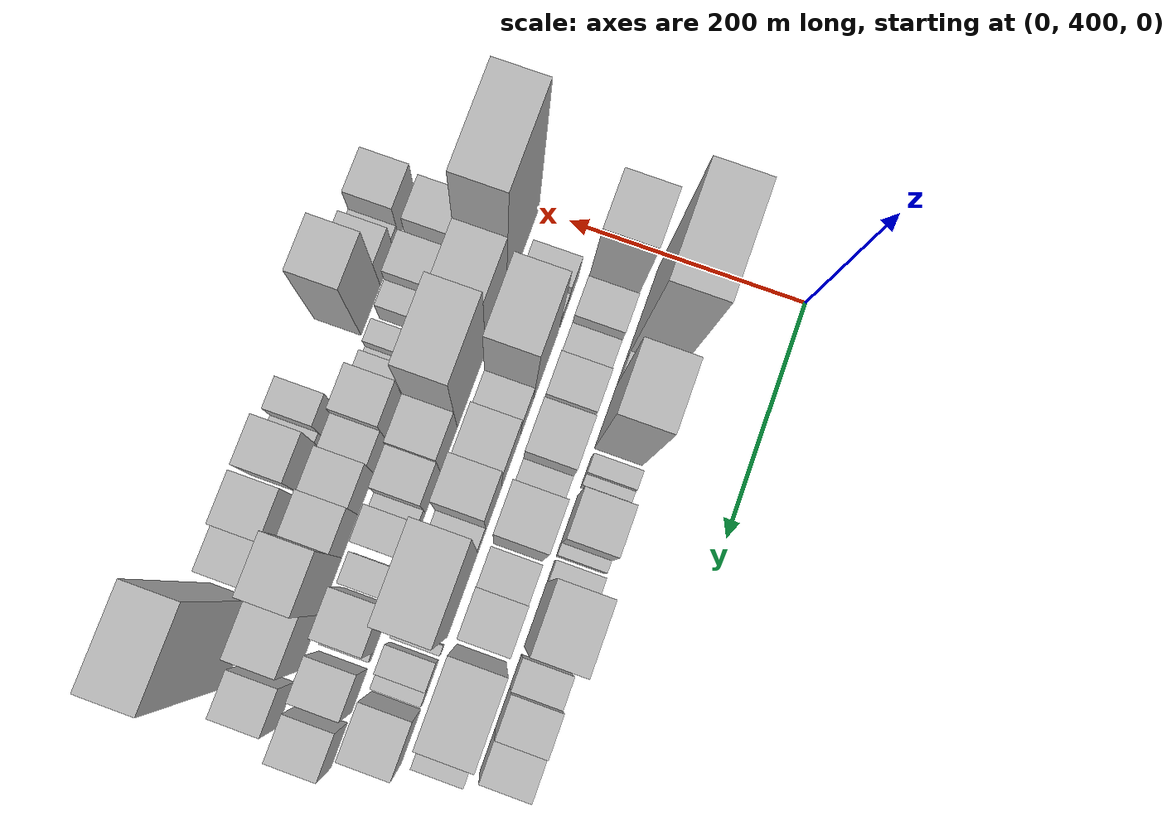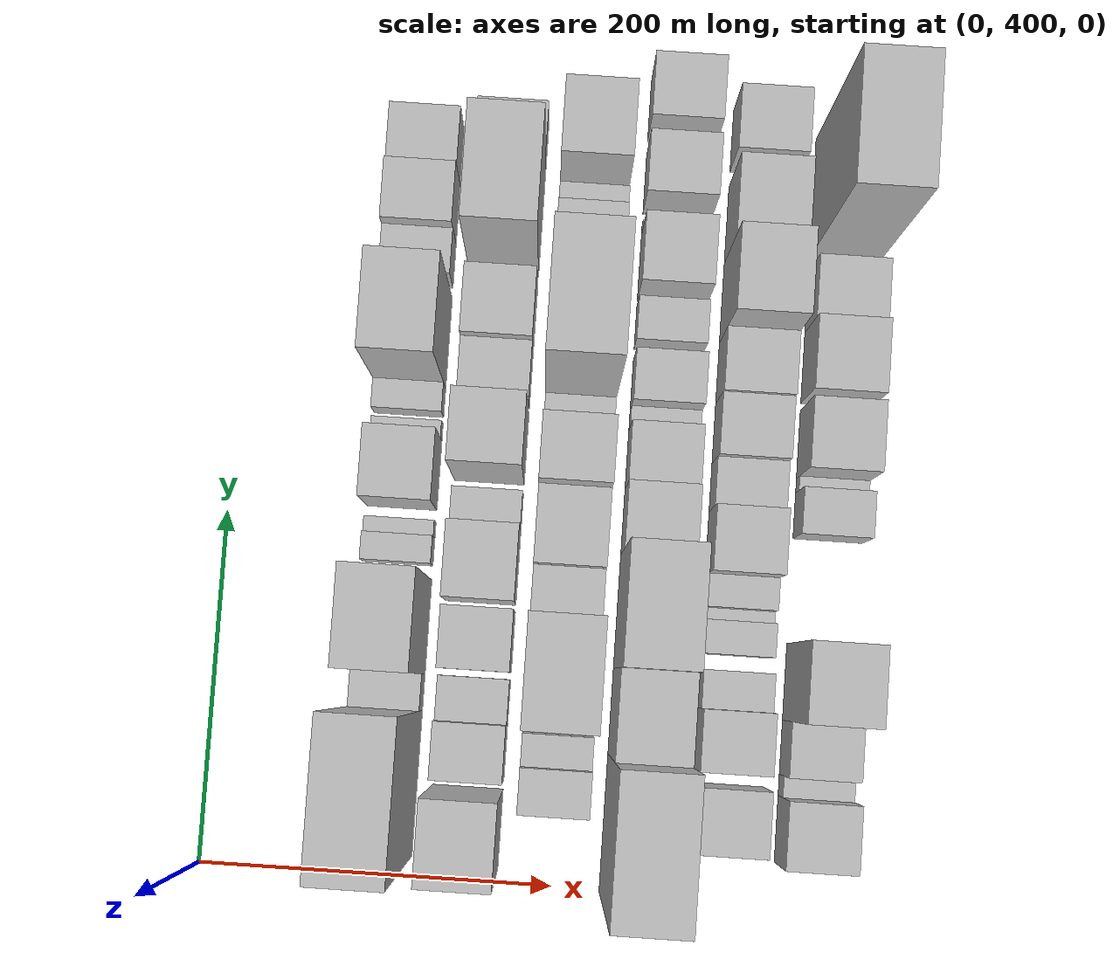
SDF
<sdf version="1.6">
 <world name="default">
  <model name="building_41">
   <static>1</static>
   <pose>100.0000 452.6909 0 0.000000 0.000000 0.000000</pose>
   <link name="link">
    <pose>0 0 108.00 0 0 0</pose>
    <collision name="collision"><geometry><box><size>40.0000 82.4830 216.0000</size></box></geometry></collision>
    <visual name="visual">
     <cast_shadows>0</cast_shadows>
     <geometry><box><size>40.0000 82.4830 216.0000</size></box></geometry>
     <material>
      <script>
       <uri>model://HANNAS_wall/materials/scripts</uri>
       <uri>model://HANNAS_wall/materials/textures</uri>
       <name>vrc/HANNAS_wall</name>
      </script>
     </material>
    </visual>
   </link>
  </model>
  <model name="building_42">
   <static>1</static>
   <pose>100.0000 504.3859 0 0.000000 0.000000 0.000000</pose>
   <link name="link">
    <pose>0 0 18.00 0 0 0</pose>
    <collision name="collision"><geometry><box><size>40.0000 20.9069 36.0000</size></box></geometry></collision>
    <visual name="visual">
     <cast_shadows>0</cast_shadows>
     <geometry><box><size>40.0000 20.9069 36.0000</size></box></geometry>
     <material>
      <script>
       <uri>model://HANNAS_wall/materials/scripts</uri>
       <uri>model://HANNAS_wall/materials/textures</uri>
       <name>vrc/HANNAS_wall</name>
      </script>
     </material>
    </visual>
   </link>
  </model>
  <model name="building_43">
   <static>1</static>
   <pose>100.0000 541.6491 0 0.000000 0.000000 0.000000</pose>
   <link name="link">
    <pose>0 0 79.50 0 0 0</pose>
    <collision name="collision"><geometry><box><size>40.0000 53.6196 159.0000</size></box></geometry></collision>
    <visual name="visual">
     <cast_shadows>0</cast_shadows>
     <geometry><box><size>40.0000 53.6196 159.0000</size></box></geometry>
     <material>
      <script>
       <uri>model://HANNAS_wall/materials/scripts</uri>
       <uri>model://HANNAS_wall/materials/textures</uri>
       <name>vrc/HANNAS_wall</name>
      </script>
     </material>
    </visual>
   </link>
  </model>
  <model name="building_44">
   <static>1</static>
   <pose>100.0000 584.3371 0 0.000000 0.000000 0.000000</pose>
   <link name="link">
    <pose>0 0 15.00 0 0 0</pose>
    <collision name="collision"><geometry><box><size>40.0000 15.7563 30.0000</size></box></geometry></collision>
    <visual name="visual">
     <cast_shadows>0</cast_shadows>
     <geometry><box><size>40.0000 15.7563 30.0000</size></box></geometry>
     <material>
      <script>
       <uri>model://HANNAS_wall/materials/scripts</uri>
       <uri>model://HANNAS_wall/materials/textures</uri>
       <name>vrc/HANNAS_wall</name>
      </script>
     </material>
    </visual>
   </link>
  </model>
  <model name="building_45">
   <static>1</static>
   <pose>100.0000 596.8520 0 0.000000 0.000000 0.000000</pose>
   <link name="link">
    <pose>0 0 10.50 0 0 0</pose>
    <collision name="collision"><geometry><box><size>40.0000 9.2735 21.0000</size></box></geometry></collision>
    <visual name="visual">
     <cast_shadows>0</cast_shadows>
     <geometry><box><size>40.0000 9.2735 21.0000</size></box></geometry>
     <material>
      <script>
       <uri>model://HANNAS_wall/materials/scripts</uri>
       <uri>model://HANNAS_wall/materials/textures</uri>
       <name>vrc/HANNAS_wall</name>
      </script>
     </material>
    </visual>
   </link>
  </model>
  <model name="building_46">
   <static>1</static>
   <pose>100.0000 628.4314 0 0.000000 0.000000 0.000000</pose>
   <link name="link">
    <pose>0 0 37.50 0 0 0</pose>
    <collision name="collision"><geometry><box><size>40.0000 39.8854 75.0000</size></box></geometry></collision>
    <visual name="visual">
     <cast_shadows>0</cast_shadows>
     <geometry><box><size>40.0000 39.8854 75.0000</size></box></geometry>
     <material>
      <script>
       <uri>model://HANNAS_wall/materials/scripts</uri>
       <uri>model://HANNAS_wall/materials/textures</uri>
       <name>vrc/HANNAS_wall</name>
      </script>
     </material>
    </visual>
   </link>
  </model>
  <model name="building_47">
   <static>1</static>
   <pose>100.0000 653.3997 0 0.000000 0.000000 0.000000</pose>
   <link name="link">
    <pose>0 0 10.50 0 0 0</pose>
    <collision name="collision"><geometry><box><size>40.0000 10.0511 21.0000</size></box></geometry></collision>
    <visual name="visual">
     <cast_shadows>0</cast_shadows>
     <geometry><box><size>40.0000 10.0511 21.0000</size></box></geometry>
     <material>
      <script>
       <uri>model://HANNAS_wall/materials/scripts</uri>
       <uri>model://HANNAS_wall/materials/textures</uri>
       <name>vrc/HANNAS_wall</name>
      </script>
     </material>
    </visual>
   </link>
  </model>
  <model name="building_48">
   <static>1</static>
   <pose>100.0000 670.7769 0 0.000000 0.000000 0.000000</pose>
   <link name="link">
    <pose>0 0 15.00 0 0 0</pose>
    <collision name="collision"><geometry><box><size>40.0000 16.7034 30.0000</size></box></geometry></collision>
    <visual name="visual">
     <cast_shadows>0</cast_shadows>
     <geometry><box><size>40.0000 16.7034 30.0000</size></box></geometry>
     <material>
      <script>
       <uri>model://HANNAS_wall/materials/scripts</uri>
       <uri>model://HANNAS_wall/materials/textures</uri>
       <name>vrc/HANNAS_wall</name>
      </script>
     </material>
    </visual>
   </link>
  </model>
  <model name="building_49">
   <static>1</static>
   <pose>100.0000 705.5917 0 0.000000 0.000000 0.000000</pose>
   <link name="link">
    <pose>0 0 73.50 0 0 0</pose>
    <collision name="collision"><geometry><box><size>40.0000 52.9262 147.0000</size></box></geometry></collision>
    <visual name="visual">
     <cast_shadows>0</cast_shadows>
     <geometry><box><size>40.0000 52.9262 147.0000</size></box></geometry>
     <material>
      <script>
       <uri>model://HANNAS_wall/materials/scripts</uri>
       <uri>model://HANNAS_wall/materials/textures</uri>
       <name>vrc/HANNAS_wall</name>
      </script>
     </material>
    </visual>
   </link>
  </model>
  <model name="building_50">
   <static>1</static>
   <pose>100.0000 750.9879 0 0.000000 0.000000 0.000000</pose>
   <link name="link">
    <pose>0 0 24.00 0 0 0</pose>
    <collision name="collision"><geometry><box><size>40.0000 25.8662 48.0000</size></box></geometry></collision>
    <visual name="visual">
     <cast_shadows>0</cast_shadows>
     <geometry><box><size>40.0000 25.8662 48.0000</size></box></geometry>
     <material>
      <script>
       <uri>model://HANNAS_wall/materials/scripts</uri>
       <uri>model://HANNAS_wall/materials/textures</uri>
       <name>vrc/HANNAS_wall</name>
      </script>
     </material>
    </visual>
   </link>
  </model>
  <model name="building_51">
   <static>1</static>
   <pose>100.0000 780.9781 0 0.000000 0.000000 0.000000</pose>
   <link name="link">
    <pose>0 0 33.00 0 0 0</pose>
    <collision name="collision"><geometry><box><size>40.0000 34.1140 66.0000</size></box></geometry></collision>
    <visual name="visual">
     <cast_shadows>0</cast_shadows>
     <geometry><box><size>40.0000 34.1140 66.0000</size></box></geometry>
     <material>
      <script>
       <uri>model://HANNAS_wall/materials/scripts</uri>
       <uri>model://HANNAS_wall/materials/textures</uri>
       <name>vrc/HANNAS_wall</name>
      </script>
     </material>
    </visual>
   </link>
  </model>
  <model name="building_52">
   <static>1</static>
   <pose>100.0000 814.6739 0 0.000000 0.000000 0.000000</pose>
   <link name="link">
    <pose>0 0 28.50 0 0 0</pose>
    <collision name="collision"><geometry><box><size>40.0000 33.2777 57.0000</size></box></geometry></collision>
    <visual name="visual">
     <cast_shadows>0</cast_shadows>
     <geometry><box><size>40.0000 33.2777 57.0000</size></box></geometry>
     <material>
      <script>
       <uri>model://HANNAS_wall/materials/scripts</uri>
       <uri>model://HANNAS_wall/materials/textures</uri>
       <name>vrc/HANNAS_wall</name>
      </script>
     </material>
    </visual>
   </link>
  </model>
  <model name="building_84">
   <static>1</static>
   <pose>149.0000 430.1123 0 0.000000 0.000000 0.000000</pose>
   <link name="link">
    <pose>0 0 75.00 0 0 0</pose>
    <collision name="collision"><geometry><box><size>40.0000 45.3367 150.0000</size></box></geometry></collision>
    <visual name="visual">
     <cast_shadows>0</cast_shadows>
     <geometry><box><size>40.0000 45.3367 150.0000</size></box></geometry>
     <material>
      <script>
       <uri>model://HANNAS_wall/materials/scripts</uri>
       <uri>model://HANNAS_wall/materials/textures</uri>
       <name>vrc/HANNAS_wall</name>
      </script>
     </material>
    </visual>
   </link>
  </model>
  <model name="building_85">
   <static>1</static>
   <pose>149.0000 473.7548 0 0.000000 0.000000 0.000000</pose>
   <link name="link">
    <pose>0 0 31.50 0 0 0</pose>
    <collision name="collision"><geometry><box><size>40.0000 31.9483 63.0000</size></box></geometry></collision>
    <visual name="visual">
     <cast_shadows>0</cast_shadows>
     <geometry><box><size>40.0000 31.9483 63.0000</size></box></geometry>
     <material>
      <script>
       <uri>model://HANNAS_wall/materials/scripts</uri>
       <uri>model://HANNAS_wall/materials/textures</uri>
       <name>vrc/HANNAS_wall</name>
      </script>
     </material>
    </visual>
   </link>
  </model>
  <model name="building_86">
   <static>1</static>
   <pose>149.0000 502.2290 0 0.000000 0.000000 0.000000</pose>
   <link name="link">
    <pose>0 0 21.00 0 0 0</pose>
    <collision name="collision"><geometry><box><size>40.0000 25.0001 42.0000</size></box></geometry></collision>
    <visual name="visual">
     <cast_shadows>0</cast_shadows>
     <geometry><box><size>40.0000 25.0001 42.0000</size></box></geometry>
     <material>
      <script>
       <uri>model://HANNAS_wall/materials/scripts</uri>
       <uri>model://HANNAS_wall/materials/textures</uri>
       <name>vrc/HANNAS_wall</name>
      </script>
     </material>
    </visual>
   </link>
  </model>
  <model name="building_87">
   <static>1</static>
   <pose>149.0000 535.9598 0 0.000000 0.000000 0.000000</pose>
   <link name="link">
    <pose>0 0 33.00 0 0 0</pose>
    <collision name="collision"><geometry><box><size>40.0000 34.4614 66.0000</size></box></geometry></collision>
    <visual name="visual">
     <cast_shadows>0</cast_shadows>
     <geometry><box><size>40.0000 34.4614 66.0000</size></box></geometry>
     <material>
      <script>
       <uri>model://HANNAS_wall/materials/scripts</uri>
       <uri>model://HANNAS_wall/materials/textures</uri>
       <name>vrc/HANNAS_wall</name>
      </script>
     </material>
    </visual>
   </link>
  </model>
  <model name="building_88">
   <static>1</static>
   <pose>149.0000 578.3269 0 0.000000 0.000000 0.000000</pose>
   <link name="link">
    <pose>0 0 37.50 0 0 0</pose>
    <collision name="collision"><geometry><box><size>40.0000 42.2729 75.0000</size></box></geometry></collision>
    <visual name="visual">
     <cast_shadows>0</cast_shadows>
     <geometry><box><size>40.0000 42.2729 75.0000</size></box></geometry>
     <material>
      <script>
       <uri>model://HANNAS_wall/materials/scripts</uri>
       <uri>model://HANNAS_wall/materials/textures</uri>
       <name>vrc/HANNAS_wall</name>
      </script>
     </material>
    </visual>
   </link>
  </model>
  <model name="building_89">
   <static>1</static>
   <pose>149.0000 609.9857 0 0.000000 0.000000 0.000000</pose>
   <link name="link">
    <pose>0 0 18.00 0 0 0</pose>
    <collision name="collision"><geometry><box><size>40.0000 21.0447 36.0000</size></box></geometry></collision>
    <visual name="visual">
     <cast_shadows>0</cast_shadows>
     <geometry><box><size>40.0000 21.0447 36.0000</size></box></geometry>
     <material>
      <script>
       <uri>model://HANNAS_wall/materials/scripts</uri>
       <uri>model://HANNAS_wall/materials/textures</uri>
       <name>vrc/HANNAS_wall</name>
      </script>
     </material>
    </visual>
   </link>
  </model>
  <model name="building_90">
   <static>1</static>
   <pose>149.0000 646.1515 0 0.000000 0.000000 0.000000</pose>
   <link name="link">
    <pose>0 0 61.50 0 0 0</pose>
    <collision name="collision"><geometry><box><size>40.0000 39.2870 123.0000</size></box></geometry></collision>
    <visual name="visual">
     <cast_shadows>0</cast_shadows>
     <geometry><box><size>40.0000 39.2870 123.0000</size></box></geometry>
     <material>
      <script>
       <uri>model://HANNAS_wall/materials/scripts</uri>
       <uri>model://HANNAS_wall/materials/textures</uri>
       <name>vrc/HANNAS_wall</name>
      </script>
     </material>
    </visual>
   </link>
  </model>
  <model name="building_91">
   <static>1</static>
   <pose>149.0000 686.3469 0 0.000000 0.000000 0.000000</pose>
   <link name="link">
    <pose>0 0 30.00 0 0 0</pose>
    <collision name="collision"><geometry><box><size>40.0000 31.1037 60.0000</size></box></geometry></collision>
    <visual name="visual">
     <cast_shadows>0</cast_shadows>
     <geometry><box><size>40.0000 31.1037 60.0000</size></box></geometry>
     <material>
      <script>
       <uri>model://HANNAS_wall/materials/scripts</uri>
       <uri>model://HANNAS_wall/materials/textures</uri>
       <name>vrc/HANNAS_wall</name>
      </script>
     </material>
    </visual>
   </link>
  </model>
  <model name="building_92">
   <static>1</static>
   <pose>149.0000 721.2364 0 0.000000 0.000000 0.000000</pose>
   <link name="link">
    <pose>0 0 37.50 0 0 0</pose>
    <collision name="collision"><geometry><box><size>40.0000 38.6753 75.0000</size></box></geometry></collision>
    <visual name="visual">
     <cast_shadows>0</cast_shadows>
     <geometry><box><size>40.0000 38.6753 75.0000</size></box></geometry>
     <material>
      <script>
       <uri>model://HANNAS_wall/materials/scripts</uri>
       <uri>model://HANNAS_wall/materials/textures</uri>
       <name>vrc/HANNAS_wall</name>
      </script>
     </material>
    </visual>
   </link>
  </model>
  <model name="building_93">
   <static>1</static>
   <pose>149.0000 778.3093 0 0.000000 0.000000 0.000000</pose>
   <link name="link">
    <pose>0 0 81.00 0 0 0</pose>
    <collision name="collision"><geometry><box><size>40.0000 61.4705 162.0000</size></box></geometry></collision>
    <visual name="visual">
     <cast_shadows>0</cast_shadows>
     <geometry><box><size>40.0000 61.4705 162.0000</size></box></geometry>
     <material>
      <script>
       <uri>model://HANNAS_wall/materials/scripts</uri>
       <uri>model://HANNAS_wall/materials/textures</uri>
       <name>vrc/HANNAS_wall</name>
      </script>
     </material>
    </visual>
   </link>
  </model>
  <model name="building_94">
   <static>1</static>
   <pose>149.0000 823.7484 0 0.000000 0.000000 0.000000</pose>
   <link name="link">
    <pose>0 0 27.00 0 0 0</pose>
    <collision name="collision"><geometry><box><size>40.0000 29.4078 54.0000</size></box></geometry></collision>
    <visual name="visual">
     <cast_shadows>0</cast_shadows>
     <geometry><box><size>40.0000 29.4078 54.0000</size></box></geometry>
     <material>
      <script>
       <uri>model://HANNAS_wall/materials/scripts</uri>
       <uri>model://HANNAS_wall/materials/textures</uri>
       <name>vrc/HANNAS_wall</name>
      </script>
     </material>
    </visual>
   </link>
  </model>
  <model name="building_132">
   <static>1</static>
   <pose>198.0000 454.5403 0 0.000000 0.000000 0.000000</pose>
   <link name="link">
    <pose>0 0 25.50 0 0 0</pose>
    <collision name="collision"><geometry><box><size>40.0000 25.8820 51.0000</size></box></geometry></collision>
    <visual name="visual">
     <cast_shadows>0</cast_shadows>
     <geometry><box><size>40.0000 25.8820 51.0000</size></box></geometry>
     <material>
      <script>
       <uri>model://HANNAS_wall/materials/scripts</uri>
       <uri>model://HANNAS_wall/materials/textures</uri>
       <name>vrc/HANNAS_wall</name>
      </script>
     </material>
    </visual>
   </link>
  </model>
  <model name="building_133">
   <static>1</static>
   <pose>198.0000 476.7308 0 0.000000 0.000000 0.000000</pose>
   <link name="link">
    <pose>0 0 18.00 0 0 0</pose>
    <collision name="collision"><geometry><box><size>40.0000 18.4990 36.0000</size></box></geometry></collision>
    <visual name="visual">
     <cast_shadows>0</cast_shadows>
     <geometry><box><size>40.0000 18.4990 36.0000</size></box></geometry>
     <material>
      <script>
       <uri>model://HANNAS_wall/materials/scripts</uri>
       <uri>model://HANNAS_wall/materials/textures</uri>
       <name>vrc/HANNAS_wall</name>
      </script>
     </material>
    </visual>
   </link>
  </model>
  <model name="building_134">
   <static>1</static>
   <pose>198.0000 520.0929 0 0.000000 0.000000 0.000000</pose>
   <link name="link">
    <pose>0 0 79.50 0 0 0</pose>
    <collision name="collision"><geometry><box><size>40.0000 60.2251 159.0000</size></box></geometry></collision>
    <visual name="visual">
     <cast_shadows>0</cast_shadows>
     <geometry><box><size>40.0000 60.2251 159.0000</size></box></geometry>
     <material>
      <script>
       <uri>model://HANNAS_wall/materials/scripts</uri>
       <uri>model://HANNAS_wall/materials/textures</uri>
       <name>vrc/HANNAS_wall</name>
      </script>
     </material>
    </visual>
   </link>
  </model>
  <model name="building_135">
   <static>1</static>
   <pose>198.0000 564.4994 0 0.000000 0.000000 0.000000</pose>
   <link name="link">
    <pose>0 0 28.50 0 0 0</pose>
    <collision name="collision"><geometry><box><size>40.0000 28.5880 57.0000</size></box></geometry></collision>
    <visual name="visual">
     <cast_shadows>0</cast_shadows>
     <geometry><box><size>40.0000 28.5880 57.0000</size></box></geometry>
     <material>
      <script>
       <uri>model://HANNAS_wall/materials/scripts</uri>
       <uri>model://HANNAS_wall/materials/textures</uri>
       <name>vrc/HANNAS_wall</name>
      </script>
     </material>
    </visual>
   </link>
  </model>
  <model name="building_136">
   <static>1</static>
   <pose>198.0000 600.4229 0 0.000000 0.000000 0.000000</pose>
   <link name="link">
    <pose>0 0 37.50 0 0 0</pose>
    <collision name="collision"><geometry><box><size>40.0000 43.2591 75.0000</size></box></geometry></collision>
    <visual name="visual">
     <cast_shadows>0</cast_shadows>
     <geometry><box><size>40.0000 43.2591 75.0000</size></box></geometry>
     <material>
      <script>
       <uri>model://HANNAS_wall/materials/scripts</uri>
       <uri>model://HANNAS_wall/materials/textures</uri>
       <name>vrc/HANNAS_wall</name>
      </script>
     </material>
    </visual>
   </link>
  </model>
  <model name="building_137">
   <static>1</static>
   <pose>198.0000 640.2983 0 0.000000 0.000000 0.000000</pose>
   <link name="link">
    <pose>0 0 52.50 0 0 0</pose>
    <collision name="collision"><geometry><box><size>40.0000 36.4915 105.0000</size></box></geometry></collision>
    <visual name="visual">
     <cast_shadows>0</cast_shadows>
     <geometry><box><size>40.0000 36.4915 105.0000</size></box></geometry>
     <material>
      <script>
       <uri>model://HANNAS_wall/materials/scripts</uri>
       <uri>model://HANNAS_wall/materials/textures</uri>
       <name>vrc/HANNAS_wall</name>
      </script>
     </material>
    </visual>
   </link>
  </model>
  <model name="building_138">
   <static>1</static>
   <pose>198.0000 667.6601 0 0.000000 0.000000 0.000000</pose>
   <link name="link">
    <pose>0 0 16.50 0 0 0</pose>
    <collision name="collision"><geometry><box><size>40.0000 18.2321 33.0000</size></box></geometry></collision>
    <visual name="visual">
     <cast_shadows>0</cast_shadows>
     <geometry><box><size>40.0000 18.2321 33.0000</size></box></geometry>
     <material>
      <script>
       <uri>model://HANNAS_wall/materials/scripts</uri>
       <uri>model://HANNAS_wall/materials/textures</uri>
       <name>vrc/HANNAS_wall</name>
      </script>
     </material>
    </visual>
   </link>
  </model>
  <model name="building_139">
   <static>1</static>
   <pose>198.0000 711.1609 0 0.000000 0.000000 0.000000</pose>
   <link name="link">
    <pose>0 0 99.00 0 0 0</pose>
    <collision name="collision"><geometry><box><size>40.0000 68.7696 198.0000</size></box></geometry></collision>
    <visual name="visual">
     <cast_shadows>0</cast_shadows>
     <geometry><box><size>40.0000 68.7696 198.0000</size></box></geometry>
     <material>
      <script>
       <uri>model://HANNAS_wall/materials/scripts</uri>
       <uri>model://HANNAS_wall/materials/textures</uri>
       <name>vrc/HANNAS_wall</name>
      </script>
     </material>
    </visual>
   </link>
  </model>
  <model name="building_140">
   <static>1</static>
   <pose>198.0000 755.6942 0 0.000000 0.000000 0.000000</pose>
   <link name="link">
    <pose>0 0 9.00 0 0 0</pose>
    <collision name="collision"><geometry><box><size>40.0000 8.2970 18.0000</size></box></geometry></collision>
    <visual name="visual">
     <cast_shadows>0</cast_shadows>
     <geometry><box><size>40.0000 8.2970 18.0000</size></box></geometry>
     <material>
      <script>
       <uri>model://HANNAS_wall/materials/scripts</uri>
       <uri>model://HANNAS_wall/materials/textures</uri>
       <name>vrc/HANNAS_wall</name>
      </script>
     </material>
    </visual>
   </link>
  </model>
  <model name="building_141">
   <static>1</static>
   <pose>198.0000 775.1864 0 0.000000 0.000000 0.000000</pose>
   <link name="link">
    <pose>0 0 21.00 0 0 0</pose>
    <collision name="collision"><geometry><box><size>40.0000 22.6873 42.0000</size></box></geometry></collision>
    <visual name="visual">
     <cast_shadows>0</cast_shadows>
     <geometry><box><size>40.0000 22.6873 42.0000</size></box></geometry>
     <material>
      <script>
       <uri>model://HANNAS_wall/materials/scripts</uri>
       <uri>model://HANNAS_wall/materials/textures</uri>
       <name>vrc/HANNAS_wall</name>
      </script>
     </material>
    </visual>
   </link>
  </model>
  <model name="building_142">
   <static>1</static>
   <pose>198.0000 792.9109 0 0.000000 0.000000 0.000000</pose>
   <link name="link">
    <pose>0 0 13.50 0 0 0</pose>
    <collision name="collision"><geometry><box><size>40.0000 12.7617 27.0000</size></box></geometry></collision>
    <visual name="visual">
     <cast_shadows>0</cast_shadows>
     <geometry><box><size>40.0000 12.7617 27.0000</size></box></geometry>
     <material>
      <script>
       <uri>model://HANNAS_wall/materials/scripts</uri>
       <uri>model://HANNAS_wall/materials/textures</uri>
       <name>vrc/HANNAS_wall</name>
      </script>
     </material>
    </visual>
   </link>
  </model>
  <model name="building_143">
   <static>1</static>
   <pose>198.0000 824.7343 0 0.000000 0.000000 0.000000</pose>
   <link name="link">
    <pose>0 0 42.00 0 0 0</pose>
    <collision name="collision"><geometry><box><size>40.0000 42.8851 84.0000</size></box></geometry></collision>
    <visual name="visual">
     <cast_shadows>0</cast_shadows>
     <geometry><box><size>40.0000 42.8851 84.0000</size></box></geometry>
     <material>
      <script>
       <uri>model://HANNAS_wall/materials/scripts</uri>
       <uri>model://HANNAS_wall/materials/textures</uri>
       <name>vrc/HANNAS_wall</name>
      </script>
     </material>
    </visual>
   </link>
  </model>
  <model name="building_177">
   <static>1</static>
   <pose>247.0000 437.8873 0 0.000000 0.000000 0.000000</pose>
   <link name="link">
    <pose>0 0 109.50 0 0 0</pose>
    <collision name="collision"><geometry><box><size>40.0000 77.5482 219.0000</size></box></geometry></collision>
    <visual name="visual">
     <cast_shadows>0</cast_shadows>
     <geometry><box><size>40.0000 77.5482 219.0000</size></box></geometry>
     <material>
      <script>
       <uri>model://HANNAS_wall/materials/scripts</uri>
       <uri>model://HANNAS_wall/materials/textures</uri>
       <name>vrc/HANNAS_wall</name>
      </script>
     </material>
    </visual>
   </link>
  </model>
  <model name="building_178">
   <static>1</static>
   <pose>247.0000 500.8887 0 0.000000 0.000000 0.000000</pose>
   <link name="link">
    <pose>0 0 70.50 0 0 0</pose>
    <collision name="collision"><geometry><box><size>40.0000 48.4547 141.0000</size></box></geometry></collision>
    <visual name="visual">
     <cast_shadows>0</cast_shadows>
     <geometry><box><size>40.0000 48.4547 141.0000</size></box></geometry>
     <material>
      <script>
       <uri>model://HANNAS_wall/materials/scripts</uri>
       <uri>model://HANNAS_wall/materials/textures</uri>
       <name>vrc/HANNAS_wall</name>
      </script>
     </material>
    </visual>
   </link>
  </model>
  <model name="building_179">
   <static>1</static>
   <pose>247.0000 557.4889 0 0.000000 0.000000 0.000000</pose>
   <link name="link">
    <pose>0 0 84.00 0 0 0</pose>
    <collision name="collision"><geometry><box><size>40.0000 64.7456 168.0000</size></box></geometry></collision>
    <visual name="visual">
     <cast_shadows>0</cast_shadows>
     <geometry><box><size>40.0000 64.7456 168.0000</size></box></geometry>
     <material>
      <script>
       <uri>model://HANNAS_wall/materials/scripts</uri>
       <uri>model://HANNAS_wall/materials/textures</uri>
       <name>vrc/HANNAS_wall</name>
      </script>
     </material>
    </visual>
   </link>
  </model>
  <model name="building_180">
   <static>1</static>
   <pose>247.0000 608.6849 0 0.000000 0.000000 0.000000</pose>
   <link name="link">
    <pose>0 0 36.00 0 0 0</pose>
    <collision name="collision"><geometry><box><size>40.0000 37.6465 72.0000</size></box></geometry></collision>
    <visual name="visual">
     <cast_shadows>0</cast_shadows>
     <geometry><box><size>40.0000 37.6465 72.0000</size></box></geometry>
     <material>
      <script>
       <uri>model://HANNAS_wall/materials/scripts</uri>
       <uri>model://HANNAS_wall/materials/textures</uri>
       <name>vrc/HANNAS_wall</name>
      </script>
     </material>
    </visual>
   </link>
  </model>
  <model name="building_181">
   <static>1</static>
   <pose>247.0000 644.4240 0 0.000000 0.000000 0.000000</pose>
   <link name="link">
    <pose>0 0 31.50 0 0 0</pose>
    <collision name="collision"><geometry><box><size>40.0000 33.8316 63.0000</size></box></geometry></collision>
    <visual name="visual">
     <cast_shadows>0</cast_shadows>
     <geometry><box><size>40.0000 33.8316 63.0000</size></box></geometry>
     <material>
      <script>
       <uri>model://HANNAS_wall/materials/scripts</uri>
       <uri>model://HANNAS_wall/materials/textures</uri>
       <name>vrc/HANNAS_wall</name>
      </script>
     </material>
    </visual>
   </link>
  </model>
  <model name="building_182">
   <static>1</static>
   <pose>247.0000 667.3816 0 0.000000 0.000000 0.000000</pose>
   <link name="link">
    <pose>0 0 13.50 0 0 0</pose>
    <collision name="collision"><geometry><box><size>40.0000 12.0836 27.0000</size></box></geometry></collision>
    <visual name="visual">
     <cast_shadows>0</cast_shadows>
     <geometry><box><size>40.0000 12.0836 27.0000</size></box></geometry>
     <material>
      <script>
       <uri>model://HANNAS_wall/materials/scripts</uri>
       <uri>model://HANNAS_wall/materials/textures</uri>
       <name>vrc/HANNAS_wall</name>
      </script>
     </material>
    </visual>
   </link>
  </model>
  <model name="building_183">
   <static>1</static>
   <pose>247.0000 687.9428 0 0.000000 0.000000 0.000000</pose>
   <link name="link">
    <pose>0 0 28.50 0 0 0</pose>
    <collision name="collision"><geometry><box><size>40.0000 29.0389 57.0000</size></box></geometry></collision>
    <visual name="visual">
     <cast_shadows>0</cast_shadows>
     <geometry><box><size>40.0000 29.0389 57.0000</size></box></geometry>
     <material>
      <script>
       <uri>model://HANNAS_wall/materials/scripts</uri>
       <uri>model://HANNAS_wall/materials/textures</uri>
       <name>vrc/HANNAS_wall</name>
      </script>
     </material>
    </visual>
   </link>
  </model>
  <model name="building_184">
   <static>1</static>
   <pose>247.0000 721.8275 0 0.000000 0.000000 0.000000</pose>
   <link name="link">
    <pose>0 0 21.00 0 0 0</pose>
    <collision name="collision"><geometry><box><size>40.0000 24.7303 42.0000</size></box></geometry></collision>
    <visual name="visual">
     <cast_shadows>0</cast_shadows>
     <geometry><box><size>40.0000 24.7303 42.0000</size></box></geometry>
     <material>
      <script>
       <uri>model://HANNAS_wall/materials/scripts</uri>
       <uri>model://HANNAS_wall/materials/textures</uri>
       <name>vrc/HANNAS_wall</name>
      </script>
     </material>
    </visual>
   </link>
  </model>
  <model name="building_185">
   <static>1</static>
   <pose>247.0000 756.5095 0 0.000000 0.000000 0.000000</pose>
   <link name="link">
    <pose>0 0 37.50 0 0 0</pose>
    <collision name="collision"><geometry><box><size>40.0000 38.6337 75.0000</size></box></geometry></collision>
    <visual name="visual">
     <cast_shadows>0</cast_shadows>
     <geometry><box><size>40.0000 38.6337 75.0000</size></box></geometry>
     <material>
      <script>
       <uri>model://HANNAS_wall/materials/scripts</uri>
       <uri>model://HANNAS_wall/materials/textures</uri>
       <name>vrc/HANNAS_wall</name>
      </script>
     </material>
    </visual>
   </link>
  </model>
  <model name="building_186">
   <static>1</static>
   <pose>247.0000 779.3067 0 0.000000 0.000000 0.000000</pose>
   <link name="link">
    <pose>0 0 7.50 0 0 0</pose>
    <collision name="collision"><geometry><box><size>40.0000 6.9607 15.0000</size></box></geometry></collision>
    <visual name="visual">
     <cast_shadows>0</cast_shadows>
     <geometry><box><size>40.0000 6.9607 15.0000</size></box></geometry>
     <material>
      <script>
       <uri>model://HANNAS_wall/materials/scripts</uri>
       <uri>model://HANNAS_wall/materials/textures</uri>
       <name>vrc/HANNAS_wall</name>
      </script>
     </material>
    </visual>
   </link>
  </model>
  <model name="building_187">
   <static>1</static>
   <pose>247.0000 806.2608 0 0.000000 0.000000 0.000000</pose>
   <link name="link">
    <pose>0 0 33.00 0 0 0</pose>
    <collision name="collision"><geometry><box><size>40.0000 34.9476 66.0000</size></box></geometry></collision>
    <visual name="visual">
     <cast_shadows>0</cast_shadows>
     <geometry><box><size>40.0000 34.9476 66.0000</size></box></geometry>
     <material>
      <script>
       <uri>model://HANNAS_wall/materials/scripts</uri>
       <uri>model://HANNAS_wall/materials/textures</uri>
       <name>vrc/HANNAS_wall</name>
      </script>
     </material>
    </visual>
   </link>
  </model>
  <model name="building_188">
   <static>1</static>
   <pose>247.0000 849.7480 0 0.000000 0.000000 0.000000</pose>
   <link name="link">
    <pose>0 0 33.00 0 0 0</pose>
    <collision name="collision"><geometry><box><size>40.0000 36.0268 66.0000</size></box></geometry></collision>
    <visual name="visual">
     <cast_shadows>0</cast_shadows>
     <geometry><box><size>40.0000 36.0268 66.0000</size></box></geometry>
     <material>
      <script>
       <uri>model://HANNAS_wall/materials/scripts</uri>
       <uri>model://HANNAS_wall/materials/textures</uri>
       <name>vrc/HANNAS_wall</name>
      </script>
     </material>
    </visual>
   </link>
  </model>
  <model name="building_226">
   <static>1</static>
   <pose>296.0000 445.7353 0 0.000000 0.000000 0.000000</pose>
   <link name="link">
    <pose>0 0 31.50 0 0 0</pose>
    <collision name="collision"><geometry><box><size>40.0000 36.3993 63.0000</size></box></geometry></collision>
    <visual name="visual">
     <cast_shadows>0</cast_shadows>
     <geometry><box><size>40.0000 36.3993 63.0000</size></box></geometry>
     <material>
      <script>
       <uri>model://HANNAS_wall/materials/scripts</uri>
       <uri>model://HANNAS_wall/materials/textures</uri>
       <name>vrc/HANNAS_wall</name>
      </script>
     </material>
    </visual>
   </link>
  </model>
  <model name="building_227">
   <static>1</static>
   <pose>296.0000 489.0888 0 0.000000 0.000000 0.000000</pose>
   <link name="link">
    <pose>0 0 30.00 0 0 0</pose>
    <collision name="collision"><geometry><box><size>40.0000 34.3078 60.0000</size></box></geometry></collision>
    <visual name="visual">
     <cast_shadows>0</cast_shadows>
     <geometry><box><size>40.0000 34.3078 60.0000</size></box></geometry>
     <material>
      <script>
       <uri>model://HANNAS_wall/materials/scripts</uri>
       <uri>model://HANNAS_wall/materials/textures</uri>
       <name>vrc/HANNAS_wall</name>
      </script>
     </material>
    </visual>
   </link>
  </model>
  <model name="building_228">
   <static>1</static>
   <pose>296.0000 517.0543 0 0.000000 0.000000 0.000000</pose>
   <link name="link">
    <pose>0 0 19.50 0 0 0</pose>
    <collision name="collision"><geometry><box><size>40.0000 21.6232 39.0000</size></box></geometry></collision>
    <visual name="visual">
     <cast_shadows>0</cast_shadows>
     <geometry><box><size>40.0000 21.6232 39.0000</size></box></geometry>
     <material>
      <script>
       <uri>model://HANNAS_wall/materials/scripts</uri>
       <uri>model://HANNAS_wall/materials/textures</uri>
       <name>vrc/HANNAS_wall</name>
      </script>
     </material>
    </visual>
   </link>
  </model>
  <model name="building_229">
   <static>1</static>
   <pose>296.0000 546.3976 0 0.000000 0.000000 0.000000</pose>
   <link name="link">
    <pose>0 0 16.50 0 0 0</pose>
    <collision name="collision"><geometry><box><size>40.0000 19.0633 33.0000</size></box></geometry></collision>
    <visual name="visual">
     <cast_shadows>0</cast_shadows>
     <geometry><box><size>40.0000 19.0633 33.0000</size></box></geometry>
     <material>
      <script>
       <uri>model://HANNAS_wall/materials/scripts</uri>
       <uri>model://HANNAS_wall/materials/textures</uri>
       <name>vrc/HANNAS_wall</name>
      </script>
     </material>
    </visual>
   </link>
  </model>
  <model name="building_230">
   <static>1</static>
   <pose>296.0000 559.5033 0 0.000000 0.000000 0.000000</pose>
   <link name="link">
    <pose>0 0 7.50 0 0 0</pose>
    <collision name="collision"><geometry><box><size>40.0000 7.1482 15.0000</size></box></geometry></collision>
    <visual name="visual">
     <cast_shadows>0</cast_shadows>
     <geometry><box><size>40.0000 7.1482 15.0000</size></box></geometry>
     <material>
      <script>
       <uri>model://HANNAS_wall/materials/scripts</uri>
       <uri>model://HANNAS_wall/materials/textures</uri>
       <name>vrc/HANNAS_wall</name>
      </script>
     </material>
    </visual>
   </link>
  </model>
  <model name="building_231">
   <static>1</static>
   <pose>296.0000 572.3332 0 0.000000 0.000000 0.000000</pose>
   <link name="link">
    <pose>0 0 16.50 0 0 0</pose>
    <collision name="collision"><geometry><box><size>40.0000 18.5117 33.0000</size></box></geometry></collision>
    <visual name="visual">
     <cast_shadows>0</cast_shadows>
     <geometry><box><size>40.0000 18.5117 33.0000</size></box></geometry>
     <material>
      <script>
       <uri>model://HANNAS_wall/materials/scripts</uri>
       <uri>model://HANNAS_wall/materials/textures</uri>
       <name>vrc/HANNAS_wall</name>
      </script>
     </material>
    </visual>
   </link>
  </model>
  <model name="building_232">
   <static>1</static>
   <pose>296.0000 599.8500 0 0.000000 0.000000 0.000000</pose>
   <link name="link">
    <pose>0 0 33.00 0 0 0</pose>
    <collision name="collision"><geometry><box><size>40.0000 36.5218 66.0000</size></box></geometry></collision>
    <visual name="visual">
     <cast_shadows>0</cast_shadows>
     <geometry><box><size>40.0000 36.5218 66.0000</size></box></geometry>
     <material>
      <script>
       <uri>model://HANNAS_wall/materials/scripts</uri>
       <uri>model://HANNAS_wall/materials/textures</uri>
       <name>vrc/HANNAS_wall</name>
      </script>
     </material>
    </visual>
   </link>
  </model>
  <model name="building_233">
   <static>1</static>
   <pose>296.0000 632.0154 0 0.000000 0.000000 0.000000</pose>
   <link name="link">
    <pose>0 0 24.00 0 0 0</pose>
    <collision name="collision"><geometry><box><size>40.0000 27.8091 48.0000</size></box></geometry></collision>
    <visual name="visual">
     <cast_shadows>0</cast_shadows>
     <geometry><box><size>40.0000 27.8091 48.0000</size></box></geometry>
     <material>
      <script>
       <uri>model://HANNAS_wall/materials/scripts</uri>
       <uri>model://HANNAS_wall/materials/textures</uri>
       <name>vrc/HANNAS_wall</name>
      </script>
     </material>
    </visual>
   </link>
  </model>
  <model name="building_234">
   <static>1</static>
   <pose>296.0000 663.3483 0 0.000000 0.000000 0.000000</pose>
   <link name="link">
    <pose>0 0 30.00 0 0 0</pose>
    <collision name="collision"><geometry><box><size>40.0000 34.8567 60.0000</size></box></geometry></collision>
    <visual name="visual">
     <cast_shadows>0</cast_shadows>
     <geometry><box><size>40.0000 34.8567 60.0000</size></box></geometry>
     <material>
      <script>
       <uri>model://HANNAS_wall/materials/scripts</uri>
       <uri>model://HANNAS_wall/materials/textures</uri>
       <name>vrc/HANNAS_wall</name>
      </script>
     </material>
    </visual>
   </link>
  </model>
  <model name="building_235">
   <static>1</static>
   <pose>296.0000 698.5319 0 0.000000 0.000000 0.000000</pose>
   <link name="link">
    <pose>0 0 33.00 0 0 0</pose>
    <collision name="collision"><geometry><box><size>40.0000 35.5105 66.0000</size></box></geometry></collision>
    <visual name="visual">
     <cast_shadows>0</cast_shadows>
     <geometry><box><size>40.0000 35.5105 66.0000</size></box></geometry>
     <material>
      <script>
       <uri>model://HANNAS_wall/materials/scripts</uri>
       <uri>model://HANNAS_wall/materials/textures</uri>
       <name>vrc/HANNAS_wall</name>
      </script>
     </material>
    </visual>
   </link>
  </model>
  <model name="building_236">
   <static>1</static>
   <pose>296.0000 739.6026 0 0.000000 0.000000 0.000000</pose>
   <link name="link">
    <pose>0 0 61.50 0 0 0</pose>
    <collision name="collision"><geometry><box><size>40.0000 46.6309 123.0000</size></box></geometry></collision>
    <visual name="visual">
     <cast_shadows>0</cast_shadows>
     <geometry><box><size>40.0000 46.6309 123.0000</size></box></geometry>
     <material>
      <script>
       <uri>model://HANNAS_wall/materials/scripts</uri>
       <uri>model://HANNAS_wall/materials/textures</uri>
       <name>vrc/HANNAS_wall</name>
      </script>
     </material>
    </visual>
   </link>
  </model>
  <model name="building_237">
   <static>1</static>
   <pose>296.0000 785.4864 0 0.000000 0.000000 0.000000</pose>
   <link name="link">
    <pose>0 0 45.00 0 0 0</pose>
    <collision name="collision"><geometry><box><size>40.0000 45.1367 90.0000</size></box></geometry></collision>
    <visual name="visual">
     <cast_shadows>0</cast_shadows>
     <geometry><box><size>40.0000 45.1367 90.0000</size></box></geometry>
     <material>
      <script>
       <uri>model://HANNAS_wall/materials/scripts</uri>
       <uri>model://HANNAS_wall/materials/textures</uri>
       <name>vrc/HANNAS_wall</name>
      </script>
     </material>
    </visual>
   </link>
  </model>
  <model name="building_238">
   <static>1</static>
   <pose>296.0000 835.2752 0 0.000000 0.000000 0.000000</pose>
   <link name="link">
    <pose>0 0 31.50 0 0 0</pose>
    <collision name="collision"><geometry><box><size>40.0000 36.4409 63.0000</size></box></geometry></collision>
    <visual name="visual">
     <cast_shadows>0</cast_shadows>
     <geometry><box><size>40.0000 36.4409 63.0000</size></box></geometry>
     <material>
      <script>
       <uri>model://HANNAS_wall/materials/scripts</uri>
       <uri>model://HANNAS_wall/materials/textures</uri>
       <name>vrc/HANNAS_wall</name>
      </script>
     </material>
    </visual>
   </link>
  </model>
  <model name="building_272">
   <static>1</static>
   <pose>345.0000 440.9697 0 0.000000 0.000000 0.000000</pose>
   <link name="link">
    <pose>0 0 31.50 0 0 0</pose>
    <collision name="collision"><geometry><box><size>40.0000 37.5141 63.0000</size></box></geometry></collision>
    <visual name="visual">
     <cast_shadows>0</cast_shadows>
     <geometry><box><size>40.0000 37.5141 63.0000</size></box></geometry>
     <material>
      <script>
       <uri>model://HANNAS_wall/materials/scripts</uri>
       <uri>model://HANNAS_wall/materials/textures</uri>
       <name>vrc/HANNAS_wall</name>
      </script>
     </material>
    </visual>
   </link>
  </model>
  <model name="building_273">
   <static>1</static>
   <pose>345.0000 465.7310 0 0.000000 0.000000 0.000000</pose>
   <link name="link">
    <pose>0 0 13.50 0 0 0</pose>
    <collision name="collision"><geometry><box><size>40.0000 12.0086 27.0000</size></box></geometry></collision>
    <visual name="visual">
     <cast_shadows>0</cast_shadows>
     <geometry><box><size>40.0000 12.0086 27.0000</size></box></geometry>
     <material>
      <script>
       <uri>model://HANNAS_wall/materials/scripts</uri>
       <uri>model://HANNAS_wall/materials/textures</uri>
       <name>vrc/HANNAS_wall</name>
      </script>
     </material>
    </visual>
   </link>
  </model>
  <model name="building_274">
   <static>1</static>
   <pose>345.0000 487.0648 0 0.000000 0.000000 0.000000</pose>
   <link name="link">
    <pose>0 0 27.00 0 0 0</pose>
    <collision name="collision"><geometry><box><size>40.0000 30.6590 54.0000</size></box></geometry></collision>
    <visual name="visual">
     <cast_shadows>0</cast_shadows>
     <geometry><box><size>40.0000 30.6590 54.0000</size></box></geometry>
     <material>
      <script>
       <uri>model://HANNAS_wall/materials/scripts</uri>
       <uri>model://HANNAS_wall/materials/textures</uri>
       <name>vrc/HANNAS_wall</name>
      </script>
     </material>
    </visual>
   </link>
  </model>
  <model name="building_275">
   <static>1</static>
   <pose>345.0000 524.1355 0 0.000000 0.000000 0.000000</pose>
   <link name="link">
    <pose>0 0 63.00 0 0 0</pose>
    <collision name="collision"><geometry><box><size>40.0000 43.4824 126.0000</size></box></geometry></collision>
    <visual name="visual">
     <cast_shadows>0</cast_shadows>
     <geometry><box><size>40.0000 43.4824 126.0000</size></box></geometry>
     <material>
      <script>
       <uri>model://HANNAS_wall/materials/scripts</uri>
       <uri>model://HANNAS_wall/materials/textures</uri>
       <name>vrc/HANNAS_wall</name>
      </script>
     </material>
    </visual>
   </link>
  </model>
  <model name="building_276">
   <static>1</static>
   <pose>345.0000 619.2071 0 0.000000 0.000000 0.000000</pose>
   <link name="link">
    <pose>0 0 24.00 0 0 0</pose>
    <collision name="collision"><geometry><box><size>40.0000 26.2203 48.0000</size></box></geometry></collision>
    <visual name="visual">
     <cast_shadows>0</cast_shadows>
     <geometry><box><size>40.0000 26.2203 48.0000</size></box></geometry>
     <material>
      <script>
       <uri>model://HANNAS_wall/materials/scripts</uri>
       <uri>model://HANNAS_wall/materials/textures</uri>
       <name>vrc/HANNAS_wall</name>
      </script>
     </material>
    </visual>
   </link>
  </model>
  <model name="building_277">
   <static>1</static>
   <pose>345.0000 636.5563 0 0.000000 0.000000 0.000000</pose>
   <link name="link">
    <pose>0 0 9.00 0 0 0</pose>
    <collision name="collision"><geometry><box><size>40.0000 8.4782 18.0000</size></box></geometry></collision>
    <visual name="visual">
     <cast_shadows>0</cast_shadows>
     <geometry><box><size>40.0000 8.4782 18.0000</size></box></geometry>
     <material>
      <script>
       <uri>model://HANNAS_wall/materials/scripts</uri>
       <uri>model://HANNAS_wall/materials/textures</uri>
       <name>vrc/HANNAS_wall</name>
      </script>
     </material>
    </visual>
   </link>
  </model>
  <model name="building_278">
   <static>1</static>
   <pose>345.0000 660.5271 0 0.000000 0.000000 0.000000</pose>
   <link name="link">
    <pose>0 0 36.00 0 0 0</pose>
    <collision name="collision"><geometry><box><size>40.0000 39.4634 72.0000</size></box></geometry></collision>
    <visual name="visual">
     <cast_shadows>0</cast_shadows>
     <geometry><box><size>40.0000 39.4634 72.0000</size></box></geometry>
     <material>
      <script>
       <uri>model://HANNAS_wall/materials/scripts</uri>
       <uri>model://HANNAS_wall/materials/textures</uri>
       <name>vrc/HANNAS_wall</name>
      </script>
     </material>
    </visual>
   </link>
  </model>
  <model name="building_279">
   <static>1</static>
   <pose>345.0000 704.9249 0 0.000000 0.000000 0.000000</pose>
   <link name="link">
    <pose>0 0 36.00 0 0 0</pose>
    <collision name="collision"><geometry><box><size>40.0000 41.3323 72.0000</size></box></geometry></collision>
    <visual name="visual">
     <cast_shadows>0</cast_shadows>
     <geometry><box><size>40.0000 41.3323 72.0000</size></box></geometry>
     <material>
      <script>
       <uri>model://HANNAS_wall/materials/scripts</uri>
       <uri>model://HANNAS_wall/materials/textures</uri>
       <name>vrc/HANNAS_wall</name>
      </script>
     </material>
    </visual>
   </link>
  </model>
  <model name="building_280">
   <static>1</static>
   <pose>345.0000 743.3364 0 0.000000 0.000000 0.000000</pose>
   <link name="link">
    <pose>0 0 30.00 0 0 0</pose>
    <collision name="collision"><geometry><box><size>40.0000 35.4906 60.0000</size></box></geometry></collision>
    <visual name="visual">
     <cast_shadows>0</cast_shadows>
     <geometry><box><size>40.0000 35.4906 60.0000</size></box></geometry>
     <material>
      <script>
       <uri>model://HANNAS_wall/materials/scripts</uri>
       <uri>model://HANNAS_wall/materials/textures</uri>
       <name>vrc/HANNAS_wall</name>
      </script>
     </material>
    </visual>
   </link>
  </model>
  <model name="building_281">
   <static>1</static>
   <pose>345.0000 804.3061 0 0.000000 0.000000 0.000000</pose>
   <link name="link">
    <pose>0 0 100.50 0 0 0</pose>
    <collision name="collision"><geometry><box><size>40.0000 70.4488 201.0000</size></box></geometry></collision>
    <visual name="visual">
     <cast_shadows>0</cast_shadows>
     <geometry><box><size>40.0000 70.4488 201.0000</size></box></geometry>
     <material>
      <script>
       <uri>model://HANNAS_wall/materials/scripts</uri>
       <uri>model://HANNAS_wall/materials/textures</uri>
       <name>vrc/HANNAS_wall</name>
      </script>
     </material>
    </visual>
   </link>
  </model>
 </world>
</sdf>
